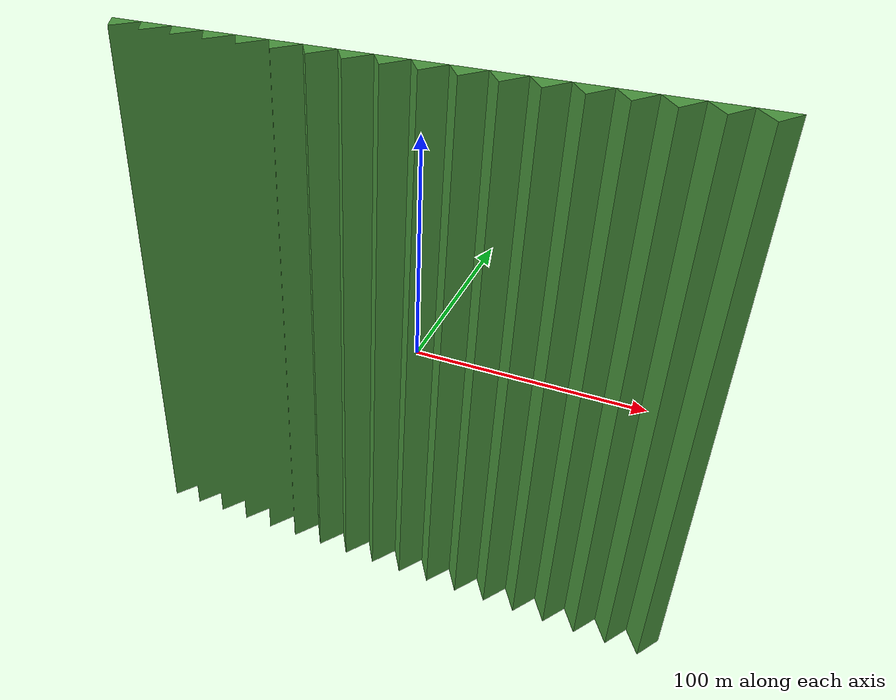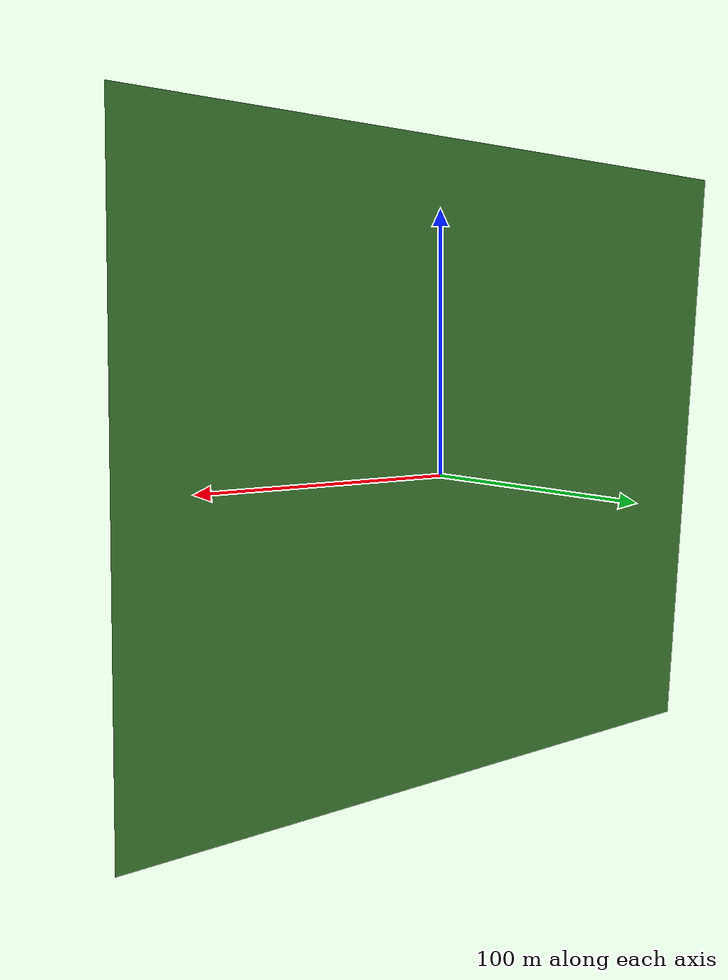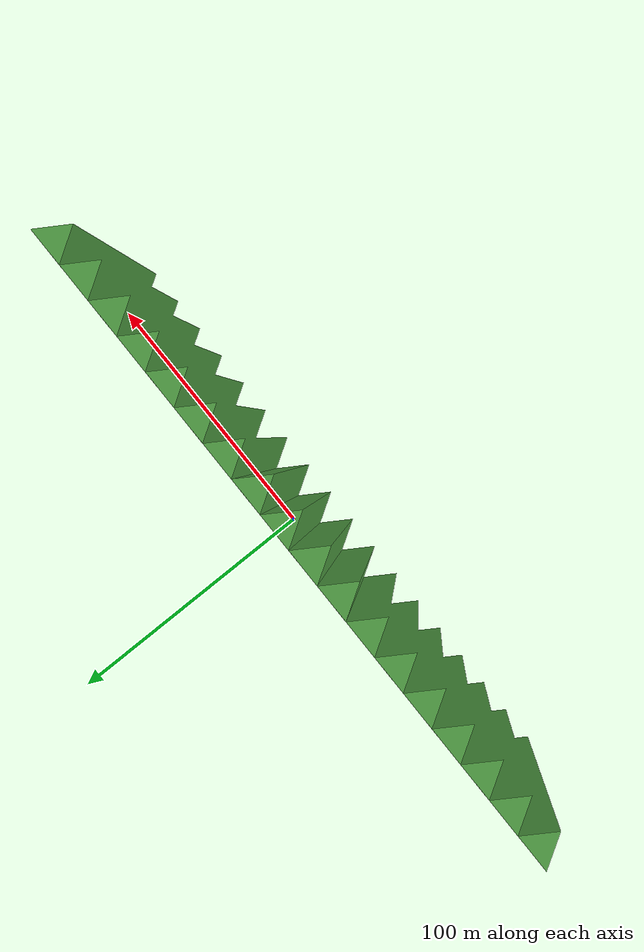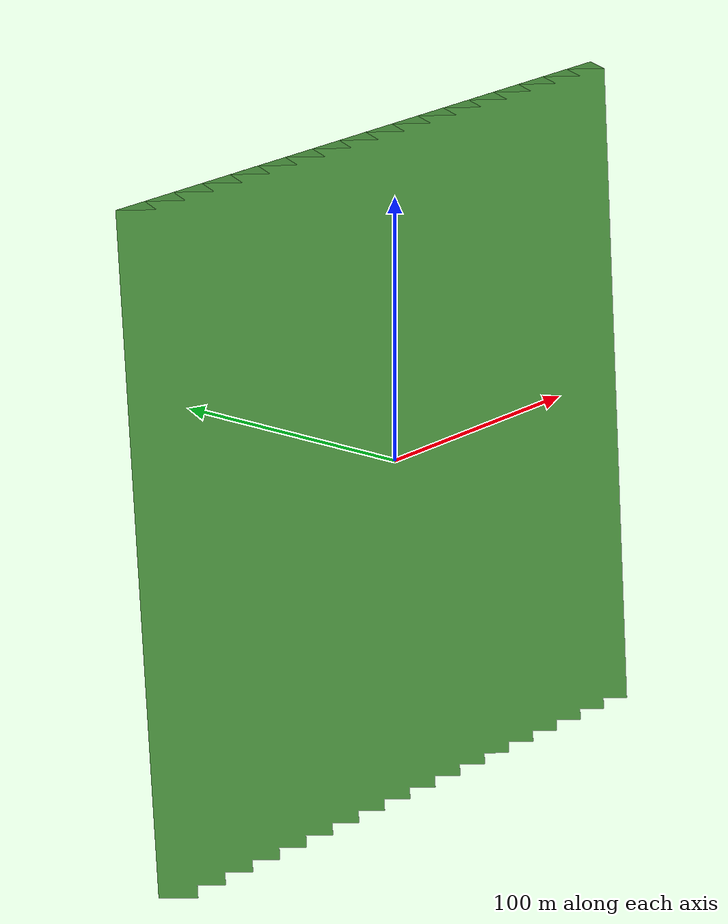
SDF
<?xml version="1.0"?>
<sdf version='1.5'>
  <model name='tri'>
    <pose>0 0 0 1.507 0 0</pose>
    <static>True</static>
    <link name='base'>
    	<collision name="collision">
        <geometry>
            <mesh><uri>model://tri/meshes/tri.obj</uri>
            </mesh>
          </geometry>
      </collision>
        <visual name="visual">
          <geometry>
            <mesh><uri>model://tri/meshes/tri.obj</uri>
            </mesh>
          </geometry>
	<material>
            <script>
              <uri>file://media/materials/scripts/gazebo.material</uri>
              <name>Gazebo/Grass</name>
            </script>
          </material>
        </visual>
   </link>
 </model>
</sdf>
